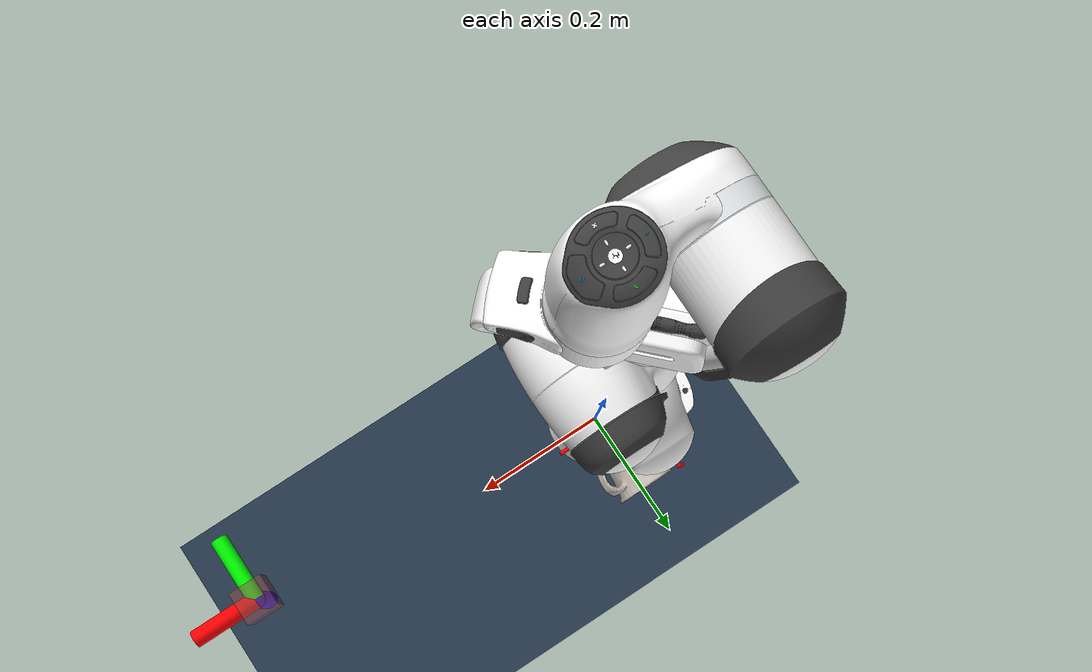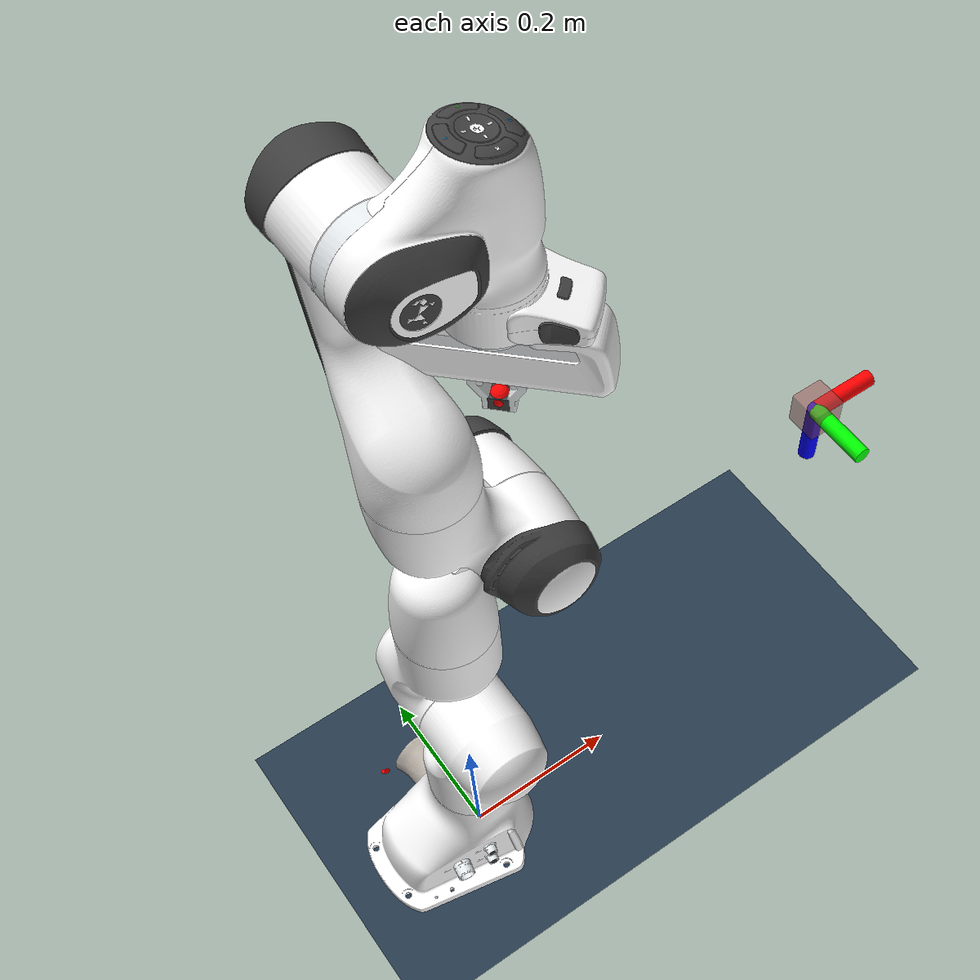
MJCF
<mujoco model="panda scene">

  <include file="panda.xml"/>
  <include file="mug_with_tag.xml"/>
  <include file="mugtree_with_tag.xml"/>

  <statistic center="0.3 0 0.35" extent="0.8" meansize="0.05"/>

  <visual>
    <headlight diffuse="0.6 0.6 0.6" ambient="0.1 0.1 0.1" specular="0 0 0"/>
    <global azimuth="120" elevation="-20"/>
  </visual>

  <asset>
    <texture name="grid" type="2d" builtin="checker" rgb1=".2 .3 .4" rgb2=".1 0.15 0.2" width="512" height="512"
      mark="cross" markrgb=".8 .8 .8"/>
    <material name="grid" texture="grid" texrepeat="1 1" texuniform="true"/>
  </asset>

  <worldbody>
    <light pos="0 0 1.5" dir="0 0 -1" directional="true"/>
    <geom name="floor" size="1 1 0.01" type="plane" material="grid"/>
    <body name="target" pos="0.5 0 .5" quat="0 1 0 0" mocap="true">
      <geom type="box" size=".02 .02 .02" contype="0" conaffinity="0" rgba=".6 .3 .3 .5"/>
      <site type="sphere" size="0.01" rgba="0 0 1 1" group="1"/>
      <geom type="cylinder" size="0.01 0.04" pos="0.04 0 0" rgba="1 0 0 1" material="Texture" euler="0 1.5708 0" class="visual"/>
      <geom type="cylinder" size="0.01 0.04" pos="0 0.04 0" rgba="0 1 0 1" material="Texture" euler="1.5708 0 0" class="visual"/>
      <geom type="cylinder" size="0.01 0.04" pos="0 0 0.04" rgba="0 0 1 1" material="Texture" euler="0 0 0" class="visual"/>
    </body>

    <body name="mug_with_tag">
      <freejoint/>
      <geom material="Texture_Mug" mesh="mug_with_tag" class="visual"/>
      <geom mesh="mug_with_tag_collision_0" rgba="0.4449763013460871 0.6888993739208505 0.842312816770509 1" class="collision"/>
      <geom mesh="mug_with_tag_collision_1" rgba="0.8147493058793346 0.6084578768921085 0.8543772203850549 1" class="collision"/>
      <geom mesh="mug_with_tag_collision_2" rgba="0.1675940875347307 0.7848622610207757 0.9286685800605973 1" class="collision"/>
      <geom mesh="mug_with_tag_collision_3" rgba="0.13423541628254165 0.22923692811376772 0.014591379438338437 1" class="collision"/>
      <geom mesh="mug_with_tag_collision_4" rgba="0.6353344231907213 0.27479794843898186 0.039764699730835074 1" class="collision"/>
      <geom mesh="mug_with_tag_collision_5" rgba="0.10301458540068387 0.2336917539684228 0.31194883868037426 1" class="collision"/>
      <geom mesh="mug_with_tag_collision_6" rgba="0.09387732105586022 0.7640093510755676 0.21579413509359613 1" class="collision"/>
      <geom mesh="mug_with_tag_collision_7" rgba="0.331169343898133 0.9088527297862445 0.2527124053053664 1" class="collision"/>
      <geom mesh="mug_with_tag_collision_8" rgba="0.8230255634089231 0.665419127566091 0.9049474863002644 1" class="collision"/>
      <geom mesh="mug_with_tag_collision_9" rgba="0.628419772055669 0.4135994615820847 0.3486868587758635 1" class="collision"/>
      <geom mesh="mug_with_tag_collision_10" rgba="0.5565690060642147 0.836640399850195 0.193171339429568 1" class="collision"/>
      <geom mesh="mug_with_tag_collision_11" rgba="0.22859979537369546 0.8901449969094043 0.13009918795549746 1" class="collision"/>
      <geom mesh="mug_with_tag_collision_12" rgba="0.08769334109209992 0.28344129774761473 0.6670723495590603 1" class="collision"/>
      <geom mesh="mug_with_tag_collision_13" rgba="0.8999909378754342 0.8504661129087295 0.8470081707796417 1" class="collision"/>
      <geom mesh="mug_with_tag_collision_14" rgba="0.2031211821110699 0.07236391364256822 0.4808890210737693 1" class="collision"/>
      <geom mesh="mug_with_tag_collision_15" rgba="0.18980102203473537 0.6621971360169723 0.7338349112815108 1" class="collision"/>
      <geom mesh="mug_with_tag_collision_16" rgba="0.2762072417847199 0.673016154795776 0.9595671713900087 1" class="collision"/>
      <geom mesh="mug_with_tag_collision_17" rgba="0.0725937479594645 0.7044349191581244 0.43488126670744187 1" class="collision"/>
      <geom mesh="mug_with_tag_collision_18" rgba="0.7616044578130823 0.9721595772204986 0.6996468793821229 1" class="collision"/>
      <geom mesh="mug_with_tag_collision_19" rgba="0.03212361465610569 0.5521414767273927 0.09832834508807486 1" class="collision"/>
      <geom mesh="mug_with_tag_collision_20" rgba="0.21960561999498995 0.3775137588098346 0.9268022852016629 1" class="collision"/>
      <geom mesh="mug_with_tag_collision_21" rgba="0.8757405969109455 0.32699217493786115 0.9017117630965703 1" class="collision"/>
      <geom mesh="mug_with_tag_collision_22" rgba="0.3240007684335865 0.2985474598596862 0.5952000922192967 1" class="collision"/>
      <geom mesh="mug_with_tag_collision_23" rgba="0.18466946702949216 0.9142227726129625 0.8797894232736918 1" class="collision"/>
      <geom mesh="mug_with_tag_collision_24" rgba="0.9090037635306101 0.9910376076892797 0.8359312172711201 1" class="collision"/>
      <geom mesh="mug_with_tag_collision_25" rgba="0.6250657133971474 0.9426848238786777 0.24739077118149133 1" class="collision"/>
      <geom mesh="mug_with_tag_collision_26" rgba="0.20166016383044438 0.7723744865043767 0.5979763326360172 1" class="collision"/>
      <geom mesh="mug_with_tag_collision_27" rgba="0.41916810315789876 0.7560807542806387 0.1154380499312253 1" class="collision"/>
      <geom mesh="mug_with_tag_collision_28" rgba="0.3131421587830313 0.1793811738758182 0.8616611765908508 1" class="collision"/>
      <geom mesh="mug_with_tag_collision_29" rgba="0.8881697449528524 0.6860595757624801 0.840237822994106 1" class="collision"/>
      <geom mesh="mug_with_tag_collision_30" rgba="0.05077399669707605 0.6770448831789695 0.967425548843384 1" class="collision"/>
      <geom mesh="mug_with_tag_collision_31" rgba="0.3398413259183435 0.8340069245568463 0.774367291124885 1" class="collision"/>
      <geom mesh="mug_with_tag_collision_32" rgba="0.447439421148511 0.8011548700448691 0.4301335176437123 1" class="collision"/>
      <geom mesh="mug_with_tag_collision_33" rgba="0.7824856738214869 0.6107769601330952 0.9831616657348266 1" class="collision"/>
      <geom mesh="mug_with_tag_collision_34" rgba="0.1881973948535013 0.6024014329337692 0.9116232983087269 1" class="collision"/>
      <geom mesh="mug_with_tag_collision_35" rgba="0.5373167870392417 0.34561353664237837 0.5511674420397981 1" class="collision"/>
      <geom mesh="mug_with_tag_collision_36" rgba="0.7752665806755705 0.42313091922455204 0.9975858617183 1" class="collision"/>
      <geom mesh="mug_with_tag_collision_37" rgba="0.016263003956870192 0.9164464801428488 0.6629181985426985 1" class="collision"/>
      <geom mesh="mug_with_tag_collision_38" rgba="0.17127375663321875 0.8043413635364332 0.726017780678326 1" class="collision"/>
      <geom mesh="mug_with_tag_collision_39" rgba="0.87881079272273 0.17979930614777928 0.8663326205508906 1" class="collision"/>
      <geom mesh="mug_with_tag_collision_40" rgba="0.6217169125971052 0.37990498719545707 0.5282573022711567 1" class="collision"/>
      <geom mesh="mug_with_tag_collision_41" rgba="0.8885027381985625 0.5090129381739181 0.9180896897256642 1" class="collision"/>
      <geom mesh="mug_with_tag_collision_42" rgba="0.7459976744691059 0.5112348612465708 0.46981444242550807 1" class="collision"/>
      <geom mesh="mug_with_tag_collision_43" rgba="0.42750543715536016 0.503306213179963 0.43517029171643085 1" class="collision"/>
      <geom mesh="mug_with_tag_collision_44" rgba="0.5976055247252084 0.08928793652406697 0.03321205878019762 1" class="collision"/>
      <geom mesh="mug_with_tag_collision_45" rgba="0.1325482609490365 0.9942194100323647 0.0839239177433222 1" class="collision"/>
      <geom mesh="mug_with_tag_collision_46" rgba="0.8500313276583958 0.8563661793692057 0.9840921310554419 1" class="collision"/>
      <geom mesh="mug_with_tag_collision_47" rgba="0.8517253173803918 0.5931724810893567 0.29268415457896046 1" class="collision"/>
      <geom mesh="mug_with_tag_collision_48" rgba="0.970938464753422 0.28231578033818416 0.009456761339682318 1" class="collision"/>
      <geom mesh="mug_with_tag_collision_49" rgba="0.1350709885831065 0.21082901490097572 0.8631583305812426 1" class="collision"/>
      <geom mesh="mug_with_tag_collision_50" rgba="0.017498447900307967 0.3710052466518662 0.18755156335217005 1" class="collision"/>
      <geom mesh="mug_with_tag_collision_51" rgba="0.8197504187636386 0.5995125735709413 0.4463579144961419 1" class="collision"/>
      <geom mesh="mug_with_tag_collision_52" rgba="0.020545121556969193 0.953494550120737 0.5997548252088507 1" class="collision"/>
      <geom mesh="mug_with_tag_collision_53" rgba="0.22288149090093612 0.1683547709395572 0.7046541663805094 1" class="collision"/>
      <geom mesh="mug_with_tag_collision_54" rgba="0.8192539418736148 0.8666459776310642 0.5885012275001282 1" class="collision"/>
      <geom mesh="mug_with_tag_collision_55" rgba="0.9042828772533906 0.5966600291843579 0.37964373984891997 1" class="collision"/>
      <geom mesh="mug_with_tag_collision_56" rgba="0.2778761256195418 0.5828528581754764 0.6943830236183886 1" class="collision"/>
      <body name="mug_tag" pos="-0.035 0.045 0.02" euler="0 2.1817 3.1416">
        <!-- geoms for x,y,z axis as cylinder, with RGB color -->
        <geom type="cylinder" size="0.003 0.02" pos="0.02 0 0" rgba="1 0 0 1" material="Texture" euler="0 1.5708 0" class="visual"/>
        <geom type="cylinder" size="0.003 0.02" pos="0 0.02 0" rgba="0 1 0 1" material="Texture" euler="1.5708 0 0" class="visual"/>
        <geom type="cylinder" size="0.003 0.02" pos="0 0 0.02" rgba="0 0 1 1" material="Texture" euler="0 0 0" class="visual"/>
      </body>

      <body name="mug_grasp" pos="-0.046 0.13 -0.026" euler="1.5708 0 2.268896">
        <!-- geoms for x,y,z axis as cylinder, with RGB color -->
        <geom type="cylinder" size="0.003 0.02" pos="0.02 0 0" rgba="1 0 0 1" material="Texture" euler="0 1.5708 0" class="visual"/>
        <geom type="cylinder" size="0.003 0.02" pos="0 0.02 0" rgba="0 1 0 1" material="Texture" euler="1.5708 0 0" class="visual"/>
        <geom type="cylinder" size="0.003 0.02" pos="0 0 0.02" rgba="0 0 1 1" material="Texture" euler="0 0 0" class="visual"/>
      </body>

      <body name="handle_center" pos="0.04 0.02 0.06" euler="0 0 0">
        <!-- geoms for x,y,z axis as cylinder, with RGB color -->
        <geom type="cylinder" size="0.003 0.02" pos="0.02 0 0" rgba="1 0 0 1" material="Texture" euler="0 1.5708 0" class="visual"/>
        <geom type="cylinder" size="0.003 0.02" pos="0 0.02 0" rgba="0 1 0 1" material="Texture" euler="1.5708 0 0" class="visual"/>
        <geom type="cylinder" size="0.003 0.02" pos="0 0 0.02" rgba="0 0 1 1" material="Texture" euler="0 0 0" class="visual"/>
      </body>

    </body>

  </worldbody>

  <keyframe>
    <key name="home" qpos="0 0 0 -1.57079 0 1.57079 0.7853 0.04 0.04 0.5 0 0.03 1 0 0 0" ctrl="0 0 0 -1.57079 0 1.57079 -0.7853 255"/>
  </keyframe>

</mujoco>

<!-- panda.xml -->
<mujoco model="panda">
  <compiler angle="radian" meshdir="assets" autolimits="true"/>

  <option integrator="implicitfast"/>

  <default>
    <default class="panda">
      <material specular="0.5" shininess="0.25"/>
      <joint armature="0.1" damping="1" axis="0 0 1" range="-2.8973 2.8973"/>
      <general dyntype="none" biastype="affine" ctrlrange="-2.8973 2.8973" forcerange="-87 87"/>
      <default class="finger">
        <joint axis="0 1 0" type="slide" range="0 0.04"/>
      </default>

      <default class="visual">
        <geom type="mesh" contype="0" conaffinity="0" group="2"/>
      </default>
      <default class="collision">
        <geom type="mesh" group="3"/>
        <default class="fingertip_pad_collision_1">
          <geom type="box" size="0.0085 0.004 0.0085" pos="0 0.0055 0.0445"/>
        </default>
        <default class="fingertip_pad_collision_2">
          <geom type="box" size="0.003 0.002 0.003" pos="0.0055 0.002 0.05"/>
        </default>
        <default class="fingertip_pad_collision_3">
          <geom type="box" size="0.003 0.002 0.003" pos="-0.0055 0.002 0.05"/>
        </default>
        <default class="fingertip_pad_collision_4">
          <geom type="box" size="0.003 0.002 0.0035" pos="0.0055 0.002 0.0395"/>
        </default>
        <default class="fingertip_pad_collision_5">
          <geom type="box" size="0.003 0.002 0.0035" pos="-0.0055 0.002 0.0395"/>
        </default>
      </default>
    </default>
  </default>

  <asset>
    <material class="panda" name="white" rgba="1 1 1 1"/>
    <material class="panda" name="off_white" rgba="0.901961 0.921569 0.929412 1"/>
    <material class="panda" name="black" rgba="0.25 0.25 0.25 1"/>
    <material class="panda" name="green" rgba="0 1 0 1"/>
    <material class="panda" name="light_blue" rgba="0.039216 0.541176 0.780392 1"/>

    <!-- Collision meshes -->
    <mesh name="link0_c" file="link0.stl"/>
    <mesh name="link1_c" file="link1.stl"/>
    <mesh name="link2_c" file="link2.stl"/>
    <mesh name="link3_c" file="link3.stl"/>
    <mesh name="link4_c" file="link4.stl"/>
    <mesh name="link5_c0" file="link5_collision_0.obj"/>
    <mesh name="link5_c1" file="link5_collision_1.obj"/>
    <mesh name="link5_c2" file="link5_collision_2.obj"/>
    <mesh name="link6_c" file="link6.stl"/>
    <mesh name="link7_c" file="link7.stl"/>
    <mesh name="hand_c" file="hand.stl"/>

    <!-- Visual meshes -->
    <mesh file="link0_0.obj"/>
    <mesh file="link0_1.obj"/>
    <mesh file="link0_2.obj"/>
    <mesh file="link0_3.obj"/>
    <mesh file="link0_4.obj"/>
    <mesh file="link0_5.obj"/>
    <mesh file="link0_7.obj"/>
    <mesh file="link0_8.obj"/>
    <mesh file="link0_9.obj"/>
    <mesh file="link0_10.obj"/>
    <mesh file="link0_11.obj"/>
    <mesh file="link1.obj"/>
    <mesh file="link2.obj"/>
    <mesh file="link3_0.obj"/>
    <mesh file="link3_1.obj"/>
    <mesh file="link3_2.obj"/>
    <mesh file="link3_3.obj"/>
    <mesh file="link4_0.obj"/>
    <mesh file="link4_1.obj"/>
    <mesh file="link4_2.obj"/>
    <mesh file="link4_3.obj"/>
    <mesh file="link5_0.obj"/>
    <mesh file="link5_1.obj"/>
    <mesh file="link5_2.obj"/>
    <mesh file="link6_0.obj"/>
    <mesh file="link6_1.obj"/>
    <mesh file="link6_2.obj"/>
    <mesh file="link6_3.obj"/>
    <mesh file="link6_4.obj"/>
    <mesh file="link6_5.obj"/>
    <mesh file="link6_6.obj"/>
    <mesh file="link6_7.obj"/>
    <mesh file="link6_8.obj"/>
    <mesh file="link6_9.obj"/>
    <mesh file="link6_10.obj"/>
    <mesh file="link6_11.obj"/>
    <mesh file="link6_12.obj"/>
    <mesh file="link6_13.obj"/>
    <mesh file="link6_14.obj"/>
    <mesh file="link6_15.obj"/>
    <mesh file="link6_16.obj"/>
    <mesh file="link7_0.obj"/>
    <mesh file="link7_1.obj"/>
    <mesh file="link7_2.obj"/>
    <mesh file="link7_3.obj"/>
    <mesh file="link7_4.obj"/>
    <mesh file="link7_5.obj"/>
    <mesh file="link7_6.obj"/>
    <mesh file="link7_7.obj"/>
    <mesh file="hand_0.obj"/>
    <mesh file="hand_1.obj"/>
    <mesh file="hand_2.obj"/>
    <mesh file="hand_3.obj"/>
    <mesh file="hand_4.obj"/>
    <mesh file="finger_0.obj"/>
    <mesh file="finger_1.obj"/>
  </asset>

  <worldbody>
    <light name="top" pos="0 0 2" mode="trackcom"/>
    <body name="link0" childclass="panda" gravcomp="1">
      <inertial mass="0.629769" pos="-0.041018 -0.00014 0.049974"
        fullinertia="0.00315 0.00388 0.004285 8.2904e-7 0.00015 8.2299e-6"/>
      <geom mesh="link0_0" material="off_white" class="visual"/>
      <geom mesh="link0_1" material="black" class="visual"/>
      <geom mesh="link0_2" material="off_white" class="visual"/>
      <geom mesh="link0_3" material="black" class="visual"/>
      <geom mesh="link0_4" material="off_white" class="visual"/>
      <geom mesh="link0_5" material="black" class="visual"/>
      <geom mesh="link0_7" material="white" class="visual"/>
      <geom mesh="link0_8" material="white" class="visual"/>
      <geom mesh="link0_9" material="black" class="visual"/>
      <geom mesh="link0_10" material="off_white" class="visual"/>
      <geom mesh="link0_11" material="white" class="visual"/>
      <geom mesh="link0_c" class="collision"/>
      <body name="link1" pos="0 0 0.333" gravcomp="1">
        <inertial mass="4.970684" pos="0.003875 0.002081 -0.04762"
          fullinertia="0.70337 0.70661 0.0091170 -0.00013900 0.0067720 0.019169"/>
        <joint name="joint1"/>
        <geom material="white" mesh="link1" class="visual"/>
        <geom mesh="link1_c" class="collision"/>
        <body name="link2" quat="1 -1 0 0" gravcomp="1">
          <inertial mass="0.646926" pos="-0.003141 -0.02872 0.003495"
            fullinertia="0.0079620 2.8110e-2 2.5995e-2 -3.925e-3 1.0254e-2 7.04e-4"/>
          <joint name="joint2" range="-1.7628 1.7628"/>
          <geom material="white" mesh="link2" class="visual"/>
          <geom mesh="link2_c" class="collision"/>
          <body name="link3" pos="0 -0.316 0" quat="1 1 0 0" gravcomp="1">
            <joint name="joint3"/>
            <inertial mass="3.228604" pos="2.7518e-2 3.9252e-2 -6.6502e-2"
              fullinertia="3.7242e-2 3.6155e-2 1.083e-2 -4.761e-3 -1.1396e-2 -1.2805e-2"/>
            <geom mesh="link3_0" material="white" class="visual"/>
            <geom mesh="link3_1" material="white" class="visual"/>
            <geom mesh="link3_2" material="white" class="visual"/>
            <geom mesh="link3_3" material="black" class="visual"/>
            <geom mesh="link3_c" class="collision"/>
            <body name="link4" pos="0.0825 0 0" quat="1 1 0 0" gravcomp="1">
              <inertial mass="3.587895" pos="-5.317e-2 1.04419e-1 2.7454e-2"
                fullinertia="2.5853e-2 1.9552e-2 2.8323e-2 7.796e-3 -1.332e-3 8.641e-3"/>
              <joint name="joint4" range="-3.0718 -0.0698"/>
              <geom mesh="link4_0" material="white" class="visual"/>
              <geom mesh="link4_1" material="white" class="visual"/>
              <geom mesh="link4_2" material="black" class="visual"/>
              <geom mesh="link4_3" material="white" class="visual"/>
              <geom mesh="link4_c" class="collision"/>
              <body name="link5" pos="-0.0825 0.384 0" quat="1 -1 0 0" gravcomp="1">
                <inertial mass="1.225946" pos="-1.1953e-2 4.1065e-2 -3.8437e-2"
                  fullinertia="3.5549e-2 2.9474e-2 8.627e-3 -2.117e-3 -4.037e-3 2.29e-4"/>
                <joint name="joint5"/>
                <geom mesh="link5_0" material="black" class="visual"/>
                <geom mesh="link5_1" material="white" class="visual"/>
                <geom mesh="link5_2" material="white" class="visual"/>
                <geom mesh="link5_c0" class="collision"/>
                <geom mesh="link5_c1" class="collision"/>
                <geom mesh="link5_c2" class="collision"/>
                <body name="link6" quat="1 1 0 0" gravcomp="1">
                  <inertial mass="1.666555" pos="6.0149e-2 -1.4117e-2 -1.0517e-2"
                    fullinertia="1.964e-3 4.354e-3 5.433e-3 1.09e-4 -1.158e-3 3.41e-4"/>
                  <joint name="joint6" range="-0.0175 3.7525"/>
                  <geom mesh="link6_0" material="off_white" class="visual"/>
                  <geom mesh="link6_1" material="white" class="visual"/>
                  <geom mesh="link6_2" material="black" class="visual"/>
                  <geom mesh="link6_3" material="white" class="visual"/>
                  <geom mesh="link6_4" material="white" class="visual"/>
                  <geom mesh="link6_5" material="white" class="visual"/>
                  <geom mesh="link6_6" material="white" class="visual"/>
                  <geom mesh="link6_7" material="light_blue" class="visual"/>
                  <geom mesh="link6_8" material="light_blue" class="visual"/>
                  <geom mesh="link6_9" material="black" class="visual"/>
                  <geom mesh="link6_10" material="black" class="visual"/>
                  <geom mesh="link6_11" material="white" class="visual"/>
                  <geom mesh="link6_12" material="green" class="visual"/>
                  <geom mesh="link6_13" material="white" class="visual"/>
                  <geom mesh="link6_14" material="black" class="visual"/>
                  <geom mesh="link6_15" material="black" class="visual"/>
                  <geom mesh="link6_16" material="white" class="visual"/>
                  <geom mesh="link6_c" class="collision"/>
                  <body name="link7" pos="0.088 0 0" quat="1 1 0 0" gravcomp="1">
                    <inertial mass="7.35522e-01" pos="1.0517e-2 -4.252e-3 6.1597e-2"
                      fullinertia="1.2516e-2 1.0027e-2 4.815e-3 -4.28e-4 -1.196e-3 -7.41e-4"/>
                    <joint name="joint7"/>
                    <geom mesh="link7_0" material="white" class="visual"/>
                    <geom mesh="link7_1" material="black" class="visual"/>
                    <geom mesh="link7_2" material="black" class="visual"/>
                    <geom mesh="link7_3" material="black" class="visual"/>
                    <geom mesh="link7_4" material="black" class="visual"/>
                    <geom mesh="link7_5" material="black" class="visual"/>
                    <geom mesh="link7_6" material="black" class="visual"/>
                    <geom mesh="link7_7" material="white" class="visual"/>
                    <geom mesh="link7_c" class="collision"/>
                    <body name="hand" pos="0 0 0.107" quat="0.9238795 0 0 -0.3826834" gravcomp="1">
                      <site name="attachment_site" rgba="1 0 0 1" size="0.01" group="1" pos = "0 0 0.1" quat="1 0 0 0"/>

                      <inertial mass="0.73" pos="-0.01 0 0.03" diaginertia="0.001 0.0025 0.0017"/>
                      <geom mesh="hand_0" material="off_white" class="visual"/>
                      <geom mesh="hand_1" material="black" class="visual"/>
                      <geom mesh="hand_2" material="black" class="visual"/>
                      <geom mesh="hand_3" material="white" class="visual"/>
                      <geom mesh="hand_4" material="off_white" class="visual"/>
                      <geom mesh="hand_c" class="collision"/>
                      <body name="left_finger" pos="0 0 0.0584" gravcomp="1">
                        <inertial mass="0.015" pos="0 0 0" diaginertia="2.375e-6 2.375e-6 7.5e-7"/>
                        <joint name="finger_joint1" class="finger"/>
                        <geom mesh="finger_0" material="off_white" class="visual"/>
                        <geom mesh="finger_1" material="black" class="visual"/>
                        <geom mesh="finger_0" class="collision"/>
                        <geom class="fingertip_pad_collision_1"/>
                        <geom class="fingertip_pad_collision_2"/>
                        <geom class="fingertip_pad_collision_3"/>
                        <geom class="fingertip_pad_collision_4"/>
                        <geom class="fingertip_pad_collision_5"/>
                      </body>
                      <body name="right_finger" pos="0 0 0.0584" quat="0 0 0 1" gravcomp="1">
                        <inertial mass="0.015" pos="0 0 0" diaginertia="2.375e-6 2.375e-6 7.5e-7"/>
                        <joint name="finger_joint2" class="finger"/>
                        <geom mesh="finger_0" material="off_white" class="visual"/>
                        <geom mesh="finger_1" material="black" class="visual"/>
                        <geom mesh="finger_0" class="collision"/>
                        <geom class="fingertip_pad_collision_1"/>
                        <geom class="fingertip_pad_collision_2"/>
                        <geom class="fingertip_pad_collision_3"/>
                        <geom class="fingertip_pad_collision_4"/>
                        <geom class="fingertip_pad_collision_5"/>
                      </body>
                    </body>
                  </body>
                </body>
              </body>
            </body>
          </body>
        </body>
      </body>
    </body>
  </worldbody>

  <tendon>
    <fixed name="split">
      <joint joint="finger_joint1" coef="0.5"/>
      <joint joint="finger_joint2" coef="0.5"/>
    </fixed>
  </tendon>

  <equality>
    <joint joint1="finger_joint1" joint2="finger_joint2" solimp="0.95 0.99 0.001" solref="0.005 1"/>
  </equality>

  <actuator>

    <motor name="joint1" joint="joint1" ctrlrange="-87 87"/>
    <motor name="joint2" joint="joint2" ctrlrange="-87 87"/>
    <motor name="joint3" joint="joint3" ctrlrange="-87 87"/>
    <motor name="joint4" joint="joint4" ctrlrange="-87 87"/>
    <motor name="joint5" joint="joint5" ctrlrange="-12 12"/>
    <motor name="joint6" joint="joint6" ctrlrange="-12 12"/>
    <motor name="joint7" joint="joint7" ctrlrange="-12 12"/>
    <general class="panda" name="actuator8" tendon="split" forcerange="-100 100" ctrlrange="0 255"
      gainprm="0.1568627451 0 0" biasprm="0 -100 -10"/>
    </actuator>
</mujoco>

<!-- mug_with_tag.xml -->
<mujoco model="mug_with_tag">
  <compiler autolimits="true" meshdir="assets" angle="radian"/>
  <asset>
    <texture type="2d" name="baked_mesh_ac1cdfa2_tex0" file="assets/baked_mesh_ac1cdfa2_tex0.png"/>
    <material name="Texture_Mug" texture="baked_mesh_ac1cdfa2_tex0" specular="0.5" shininess="0.5"/>
    <mesh file="mug_with_tag.obj"/>
    <mesh file="mug_with_tag_collision_0.obj"/>
    <mesh file="mug_with_tag_collision_1.obj"/>
    <mesh file="mug_with_tag_collision_2.obj"/>
    <mesh file="mug_with_tag_collision_3.obj"/>
    <mesh file="mug_with_tag_collision_4.obj"/>
    <mesh file="mug_with_tag_collision_5.obj"/>
    <mesh file="mug_with_tag_collision_6.obj"/>
    <mesh file="mug_with_tag_collision_7.obj"/>
    <mesh file="mug_with_tag_collision_8.obj"/>
    <mesh file="mug_with_tag_collision_9.obj"/>
    <mesh file="mug_with_tag_collision_10.obj"/>
    <mesh file="mug_with_tag_collision_11.obj"/>
    <mesh file="mug_with_tag_collision_12.obj"/>
    <mesh file="mug_with_tag_collision_13.obj"/>
    <mesh file="mug_with_tag_collision_14.obj"/>
    <mesh file="mug_with_tag_collision_15.obj"/>
    <mesh file="mug_with_tag_collision_16.obj"/>
    <mesh file="mug_with_tag_collision_17.obj"/>
    <mesh file="mug_with_tag_collision_18.obj"/>
    <mesh file="mug_with_tag_collision_19.obj"/>
    <mesh file="mug_with_tag_collision_20.obj"/>
    <mesh file="mug_with_tag_collision_21.obj"/>
    <mesh file="mug_with_tag_collision_22.obj"/>
    <mesh file="mug_with_tag_collision_23.obj"/>
    <mesh file="mug_with_tag_collision_24.obj"/>
    <mesh file="mug_with_tag_collision_25.obj"/>
    <mesh file="mug_with_tag_collision_26.obj"/>
    <mesh file="mug_with_tag_collision_27.obj"/>
    <mesh file="mug_with_tag_collision_28.obj"/>
    <mesh file="mug_with_tag_collision_29.obj"/>
    <mesh file="mug_with_tag_collision_30.obj"/>
    <mesh file="mug_with_tag_collision_31.obj"/>
    <mesh file="mug_with_tag_collision_32.obj"/>
    <mesh file="mug_with_tag_collision_33.obj"/>
    <mesh file="mug_with_tag_collision_34.obj"/>
    <mesh file="mug_with_tag_collision_35.obj"/>
    <mesh file="mug_with_tag_collision_36.obj"/>
    <mesh file="mug_with_tag_collision_37.obj"/>
    <mesh file="mug_with_tag_collision_38.obj"/>
    <mesh file="mug_with_tag_collision_39.obj"/>
    <mesh file="mug_with_tag_collision_40.obj"/>
    <mesh file="mug_with_tag_collision_41.obj"/>
    <mesh file="mug_with_tag_collision_42.obj"/>
    <mesh file="mug_with_tag_collision_43.obj"/>
    <mesh file="mug_with_tag_collision_44.obj"/>
    <mesh file="mug_with_tag_collision_45.obj"/>
    <mesh file="mug_with_tag_collision_46.obj"/>
    <mesh file="mug_with_tag_collision_47.obj"/>
    <mesh file="mug_with_tag_collision_48.obj"/>
    <mesh file="mug_with_tag_collision_49.obj"/>
    <mesh file="mug_with_tag_collision_50.obj"/>
    <mesh file="mug_with_tag_collision_51.obj"/>
    <mesh file="mug_with_tag_collision_52.obj"/>
    <mesh file="mug_with_tag_collision_53.obj"/>
    <mesh file="mug_with_tag_collision_54.obj"/>
    <mesh file="mug_with_tag_collision_55.obj"/>
    <mesh file="mug_with_tag_collision_56.obj"/>
  </asset>
  <worldbody>

  </worldbody>
</mujoco>

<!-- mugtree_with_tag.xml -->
<mujoco model="mugtree_with_tag">
  <compiler autolimits="true" meshdir="assets" angle="radian"/>
  <asset>
    <texture type="2d" name="baked_mesh_570dd0b2_tex0" file="assets/baked_mesh_570dd0b2_tex0.png"/>
    <material name="Texture" texture="baked_mesh_570dd0b2_tex0" specular="0.5" shininess="0.5"/>
    <mesh file="mugtree_with_tag.obj"/>
    <mesh file="mugtree_with_tag_collision_0.obj"/>
    <mesh file="mugtree_with_tag_collision_1.obj"/>
    <mesh file="mugtree_with_tag_collision_2.obj"/>
    <mesh file="mugtree_with_tag_collision_3.obj"/>
    <mesh file="mugtree_with_tag_collision_4.obj"/>
    <mesh file="mugtree_with_tag_collision_5.obj"/>
    <mesh file="mugtree_with_tag_collision_6.obj"/>
    <mesh file="mugtree_with_tag_collision_7.obj"/>
    <mesh file="mugtree_with_tag_collision_8.obj"/>
    <mesh file="mugtree_with_tag_collision_9.obj"/>
    <mesh file="mugtree_with_tag_collision_10.obj"/>
    <mesh file="mugtree_with_tag_collision_11.obj"/>
    <mesh file="mugtree_with_tag_collision_12.obj"/>
    <mesh file="mugtree_with_tag_collision_13.obj"/>
  </asset>
  <worldbody>

  </worldbody>
</mujoco>
